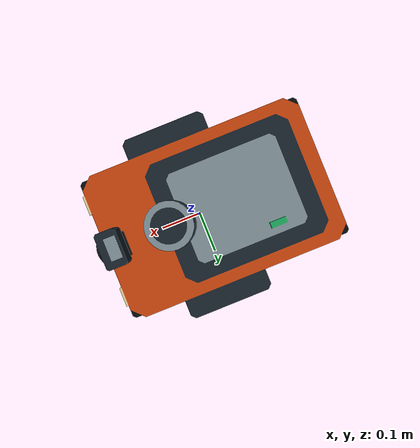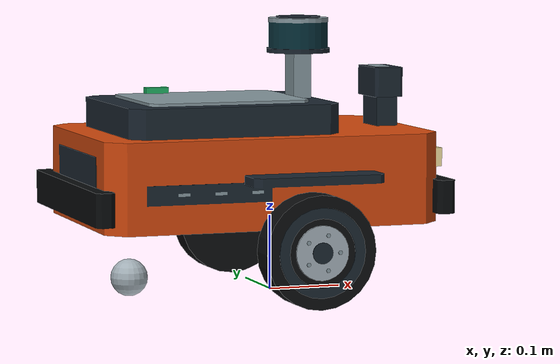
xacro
<?xml version="1.0"?>
<robot name="warehouse_robot" xmlns:xacro="http://www.ros.org/wiki/xacro">
  <xacro:arg name="lidar" default="true"/>
  <xacro:arg name="camera" default="true"/>
  <xacro:arg name="imu" default="true"/>
  <xacro:property name="wheel_radius" value="0.075"/>
  <xacro:property name="wheel_width" value="0.04"/>
  <xacro:property name="track" value="0.36"/>
  <material name="orange"><color rgba="0.95 0.40 0.06 1"/></material>
  <material name="slate"><color rgba="0.16 0.22 0.28 1"/></material>
  <material name="rubber"><color rgba="0.045 0.05 0.055 1"/></material>
  <material name="silver"><color rgba="0.65 0.70 0.73 1"/></material>
  <material name="glass"><color rgba="0.05 0.65 0.72 1"/></material>
  <material name="light"><color rgba="1 0.95 0.70 1"/></material>

  <xacro:macro name="box_inertia" params="mass x y z xyz:='0 0 0'">
    <inertial>
      <origin xyz="${xyz}"/>
      <mass value="${mass}"/>
      <inertia ixx="${mass*(y*y+z*z)/12}" ixy="0" ixz="0"
               iyy="${mass*(x*x+z*z)/12}" iyz="0" izz="${mass*(x*x+y*y)/12}"/>
    </inertial>
  </xacro:macro>
  <xacro:macro name="box_visual" params="name xyz size material">
    <visual name="${name}">
      <origin xyz="${xyz}"/><geometry><box size="${size}"/></geometry>
      <material name="${material}"/>
    </visual>
  </xacro:macro>
  <xacro:macro name="fixed_joint" params="name parent child xyz rpy:='0 0 0'">
    <joint name="${name}" type="fixed">
      <parent link="${parent}"/><child link="${child}"/>
      <origin xyz="${xyz}" rpy="${rpy}"/>
    </joint>
  </xacro:macro>

  <link name="base_footprint"/>
  <xacro:fixed_joint name="base_joint" parent="base_footprint" child="base_link" xyz="0 0 0.16"/>
  <link name="base_link">
    <xacro:box_inertia mass="6.0" x="0.46" y="0.30" z="0.12" xyz="-0.04 0 0"/>
    <visual name="body"><geometry><mesh filename="file://$(find warehouse_robot_description)/meshes/body.dae"/></geometry></visual>
    <collision name="chassis"><origin xyz="-0.04 0 0"/><geometry><box size="0.46 0.30 0.12"/></geometry></collision>
    <collision name="equipment_cover"><origin xyz="-0.085 0 0.08"/><geometry><box size="0.29 0.24 0.04"/></geometry></collision>
    <collision name="front_bumper"><origin xyz="0.195 0 -0.025"/><geometry><box size="0.025 0.31 0.045"/></geometry></collision>
    <collision name="rear_bumper"><origin xyz="-0.275 0 -0.025"/><geometry><box size="0.025 0.31 0.045"/></geometry></collision>
    <collision name="sensor_mast"><origin xyz="0.04 0 0.125"/><geometry><box size="0.025 0.035 0.13"/></geometry></collision>
  </link>

  <xacro:macro name="wheel" params="side sign">
    <joint name="${side}_wheel_joint" type="continuous">
      <parent link="base_link"/><child link="${side}_wheel_link"/>
      <origin xyz="0 ${sign*track/2} -0.085"/>
      <axis xyz="0 1 0"/><limit effort="5" velocity="15"/>
      <dynamics damping="0.01" friction="0"/>
    </joint>
    <link name="${side}_wheel_link">
      <inertial>
        <mass value="0.32"/>
        <inertia ixx="${0.32*(3*wheel_radius**2+wheel_width**2)/12}" ixy="0" ixz="0"
                 iyy="${0.32*wheel_radius**2/2}" iyz="0"
                 izz="${0.32*(3*wheel_radius**2+wheel_width**2)/12}"/>
      </inertial>
      <visual name="tire"><origin rpy="${pi/2} 0 0"/><geometry><cylinder radius="${wheel_radius}" length="${wheel_width}"/></geometry><material name="rubber"/></visual>
      <visual name="hub"><origin xyz="0 ${sign*0.021} 0" rpy="${pi/2} 0 0"/><geometry><cylinder radius="0.036" length="0.003"/></geometry><material name="silver"/></visual>
      <visual name="wheel_trim"><origin xyz="0 ${sign*0.0229} 0" rpy="${-sign*pi/2} 0 0"/><geometry><mesh filename="file://$(find warehouse_robot_description)/meshes/wheel_trim.dae"/></geometry></visual>
      <collision name="tire"><origin rpy="${pi/2} 0 0"/><geometry><cylinder radius="${wheel_radius}" length="${wheel_width}"/></geometry></collision>
    </link>
    <gazebo reference="${side}_wheel_link"><mu1>1.0</mu1><mu2>1.0</mu2></gazebo>
  </xacro:macro>
  <xacro:wheel side="left" sign="1"/>
  <xacro:wheel side="right" sign="-1"/>

  <xacro:fixed_joint name="caster_joint" parent="base_link" child="caster_link" xyz="-0.20 0 -0.135"/>
  <link name="caster_link">
    <inertial><mass value="0.10"/><inertia ixx="0.000025" ixy="0" ixz="0" iyy="0.000025" iyz="0" izz="0.000025"/></inertial>
    <visual><geometry><sphere radius="0.025"/></geometry><material name="silver"/></visual>
    <collision><geometry><sphere radius="0.025"/></geometry></collision>
  </link>
  <gazebo reference="caster_joint"><preserveFixedJoint>true</preserveFixedJoint></gazebo>
  <gazebo reference="caster_link"><mu1>0.001</mu1><mu2>0.001</mu2></gazebo>

  <xacro:fixed_joint name="lidar_joint" parent="base_link" child="lidar_link" xyz="0.04 0 0.185"/>
  <link name="lidar_link">
    <xacro:box_inertia mass="0.15" x="0.08" y="0.08" z="0.035"/>
    <visual name="lidar_shell"><geometry><mesh filename="file://$(find warehouse_robot_description)/meshes/lidar_shell.dae"/></geometry></visual>
    <collision><geometry><cylinder radius="0.04" length="0.035"/></geometry></collision>
  </link>
  <gazebo reference="lidar_joint"><preserveFixedJoint>true</preserveFixedJoint></gazebo>
  <xacro:if value="$(arg lidar)">
    <gazebo reference="lidar_link">
      <sensor name="lidar" type="gpu_lidar">
        <always_on>true</always_on><update_rate>10</update_rate><topic>/scan</topic><frame_id>lidar_link</frame_id>
        <lidar><scan>
          <horizontal><samples>720</samples><resolution>1</resolution><min_angle>${-pi}</min_angle><max_angle>${pi}</max_angle></horizontal>
          <vertical><samples>1</samples><resolution>1</resolution><min_angle>0</min_angle><max_angle>0</max_angle></vertical>
        </scan><range><min>0.10</min><max>8.0</max><resolution>0.01</resolution></range></lidar>
      </sensor>
    </gazebo>
  </xacro:if>

  <xacro:fixed_joint name="camera_joint" parent="base_link" child="camera_link" xyz="0.16 0 0.12"/>
  <link name="camera_link">
    <xacro:box_inertia mass="0.10" x="0.04" y="0.07" z="0.04"/>
    <visual name="camera_shell"><geometry><mesh filename="file://$(find warehouse_robot_description)/meshes/camera_shell.dae"/></geometry></visual>
    <collision><geometry><box size="0.04 0.07 0.04"/></geometry></collision>
  </link>
  <gazebo reference="camera_joint"><preserveFixedJoint>true</preserveFixedJoint></gazebo>
  <link name="camera_optical_frame"/>
  <xacro:fixed_joint name="camera_optical_joint" parent="camera_link" child="camera_optical_frame" xyz="0 0 0" rpy="${-pi/2} 0 ${-pi/2}"/>
  <xacro:if value="$(arg camera)">
    <gazebo reference="camera_link">
      <sensor name="camera" type="camera">
        <always_on>true</always_on><update_rate>10</update_rate><topic>/camera/image_raw</topic><frame_id>camera_optical_frame</frame_id>
        <camera><horizontal_fov>${70*pi/180}</horizontal_fov>
          <camera_info_topic>/camera/camera_info</camera_info_topic>
          <image><width>480</width><height>360</height><format>R8G8B8</format></image>
          <clip><near>0.05</near><far>15</far></clip>
        </camera>
      </sensor>
    </gazebo>
  </xacro:if>

  <xacro:fixed_joint name="imu_joint" parent="base_link" child="imu_link" xyz="-0.04 0 0"/>
  <link name="imu_link">
    <xacro:box_inertia mass="0.05" x="0.025" y="0.025" z="0.012"/>
    <xacro:box_visual name="imu" xyz="0 0 0" size="0.025 0.025 0.012" material="glass"/>
  </link>
  <gazebo reference="imu_joint"><preserveFixedJoint>true</preserveFixedJoint></gazebo>
  <xacro:if value="$(arg imu)">
    <gazebo reference="imu_link">
      <sensor name="imu" type="imu"><always_on>true</always_on><update_rate>50</update_rate><topic>/imu/data</topic><frame_id>imu_link</frame_id><imu/></sensor>
    </gazebo>
  </xacro:if>

  <gazebo>
    <plugin filename="gz-sim-diff-drive-system" name="gz::sim::systems::DiffDrive">
      <left_joint>left_wheel_joint</left_joint><right_joint>right_wheel_joint</right_joint>
      <wheel_separation>${track}</wheel_separation><wheel_radius>${wheel_radius}</wheel_radius>
      <topic>/model/warehouse_robot/cmd_vel</topic><odom_topic>/model/warehouse_robot/odometry</odom_topic><tf_topic>/model/warehouse_robot/tf</tf_topic>
      <frame_id>odom</frame_id><child_frame_id>base_footprint</child_frame_id><odom_publish_frequency>50</odom_publish_frequency>
      <max_linear_velocity>0.30</max_linear_velocity><min_linear_velocity>-0.30</min_linear_velocity>
      <max_angular_velocity>0.8</max_angular_velocity><min_angular_velocity>-0.8</min_angular_velocity>
      <max_linear_acceleration>0.5</max_linear_acceleration><min_linear_acceleration>-0.5</min_linear_acceleration>
      <max_angular_acceleration>1.5</max_angular_acceleration><min_angular_acceleration>-1.5</min_angular_acceleration>
    </plugin>
    <plugin filename="gz-sim-joint-state-publisher-system" name="gz::sim::systems::JointStatePublisher">
      <topic>/model/warehouse_robot/joint_state</topic><joint_name>left_wheel_joint</joint_name><joint_name>right_wheel_joint</joint_name>
      <update_rate>50</update_rate>
    </plugin>
  </gazebo>
</robot>
